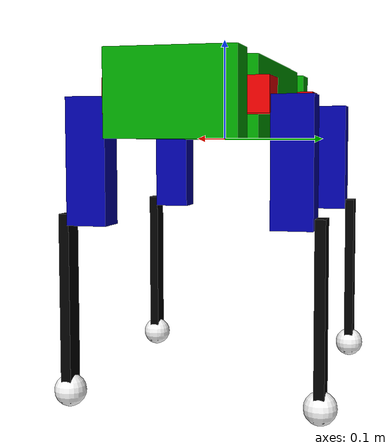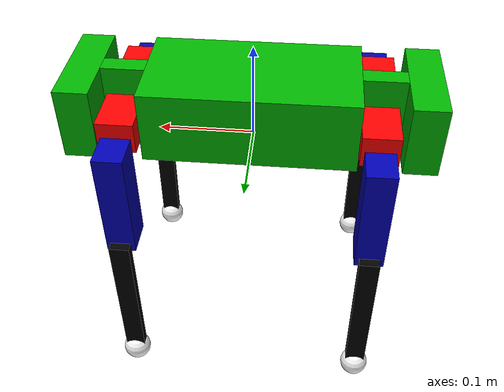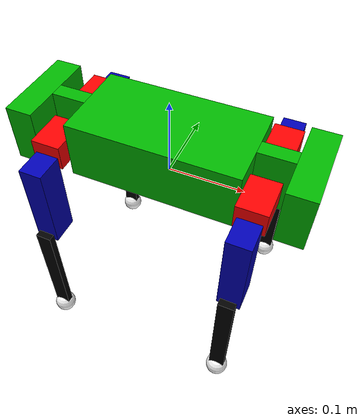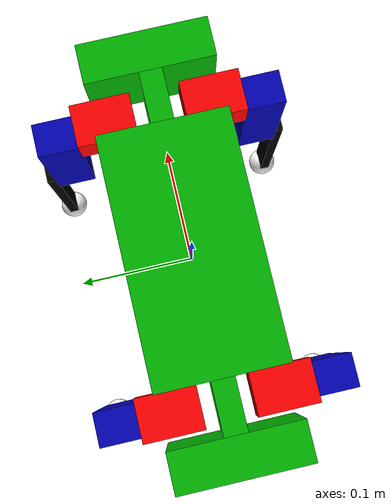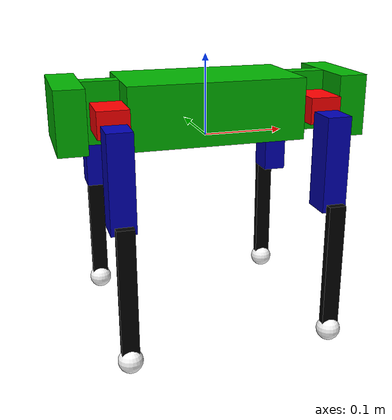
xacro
<?xml version="1.0"?>
<robot xmlns:xacro="http://ros.org/wiki/xacro" name="Robodog">

  <!-- LEG CONFIGURATION VARIABLES -->

  <!-- Leg segment lengths (easy to modify) -->
  <xacro:property name="upper_leg_length" value="0.1054"/>
  <xacro:property name="lower_leg_length" value="0.165"/>

  <!-- Leg positioning relative to body -->
  <xacro:property name="leg_front_x" value="0.12675"/>
  <xacro:property name="leg_back_x" value="-0.12675"/>
  <xacro:property name="leg_left_y" value="0.032"/>
  <xacro:property name="leg_right_y" value="-0.032"/>
  <xacro:property name="leg_base_z" value="0.0375"/>

  <!-- Servo dimensions and positioning -->
  <xacro:property name="servo_width" value="0.0375"/>
  <xacro:property name="servo_depth" value="0.0527"/>
  <xacro:property name="servo_height" value="0.0317"/>
  <xacro:property name="servo_y_offset_right" value="-0.01624"/>
  <xacro:property name="servo_y_offset_left" value="0.01624"/>

  <!-- Upper leg dimensions -->
  <xacro:property name="upper_leg_width" value="0.0297"/>
  <xacro:property name="upper_leg_depth" value="0.037"/>

  <!-- Lower leg dimensions -->
  <xacro:property name="lower_leg_width" value="0.021"/>
  <xacro:property name="lower_leg_depth" value="0.009487"/>

  <!-- Paw dimensions -->
  <xacro:property name="paw_radius" value="0.015"/>

  <!-- CALCULATED OFFSETS (AUTOMATIC) -->

  <!-- Overlap distance for better visual connection -->
  <xacro:property name="overlap_distance" value="0.005"/>

  <!-- Visual leg lengths (longer than actual for overlap) -->
  <xacro:property name="upper_leg_visual_length" value="${upper_leg_length + overlap_distance * 2}"/>
  <xacro:property name="lower_leg_visual_length" value="${lower_leg_length + overlap_distance * 2}"/>

  <!-- Offset from servo to upper leg joint (servo depth/2 + upper leg depth/2 - overlap) -->
  <xacro:property name="servo_to_upper_offset" value="${servo_depth/2 + upper_leg_depth/2 - overlap_distance/2}"/>

  <!-- Offset from upper leg to lower leg joint (upper leg depth/2 + lower leg depth/2 - overlap) -->
  <xacro:property name="upper_to_lower_offset" value="${upper_leg_depth/2 + lower_leg_depth*2}"/>

  <!-- Distance from lower leg joint to paw (equals lower leg length) -->
  <xacro:property name="lower_to_paw_offset" value="${lower_leg_length}"/>

  <!-- Joint limits -->
  <xacro:property name="servo_joint_lower" value="-1.0"/>
  <xacro:property name="servo_joint_upper" value="1.0"/>
  <xacro:property name="leg_joint_lower" value="-1.5"/>
  <xacro:property name="leg_joint_upper" value="1.5"/>
  <xacro:property name="joint_effort" value="0.0"/>
  <xacro:property name="joint_velocity" value="0.2"/>

  <!-- Materials -->
  <material name="red"><color rgba="1 0.0 0.0 1.0"/></material>
  <material name="green"><color rgba="0.0 0.7 0.0 1.0"/></material>
  <material name="blue"><color rgba="0.0 0.0 0.7 1.0"/></material>
  <material name="black"><color rgba="0.0 0.0 0.0 1.0"/></material>
  <material name="white"><color rgba="1.0 1.0 1.0 1.0"/></material>

  <!-- Macros for links -->
  <xacro:macro name="box_link" params="name size xyz rpy color">
    <link name="${name}">
      <visual>
        <origin xyz="${xyz}" rpy="${rpy}"/>
        <geometry>
          <box size="${size}"/>
        </geometry>
        <material name="${color}"/>
      </visual>
    </link>
  </xacro:macro>

  <xacro:macro name="sphere_link" params="name radius color xyz">
    <link name="${name}">
      <visual>
        <origin xyz="${xyz}" rpy="0.0 0.0 0.0"/>
        <geometry>
          <sphere radius="${radius}"/>
        </geometry>
        <material name="${color}"/>
      </visual>
    </link>
  </xacro:macro>

  <!-- Macros for joints -->
  <xacro:macro name="joint_fixed" params="name xyz rpy parent child">
    <joint name="${name}" type="fixed">
      <origin xyz="${xyz}" rpy="${rpy}"/>
      <parent link="${parent}"/>
      <child link="${child}"/>
    </joint>
  </xacro:macro>

  <xacro:macro name="joint_revolute" params="name xyz rpy parent child axis lower upper effort velocity">
    <joint name="${name}" type="revolute">
      <origin xyz="${xyz}" rpy="${rpy}"/>
      <parent link="${parent}"/>
      <child link="${child}"/>
      <axis xyz="${axis}"/>
      <limit lower="${lower}" upper="${upper}" effort="${effort}" velocity="${velocity}"/>
    </joint>
  </xacro:macro>

  <!-- Macro for a complete leg using configurable variables -->
  <xacro:macro name="robodog_leg" params="prefix reflect_y is_front servo_color upper_leg_color lower_leg_color paw_color">
    <!-- Calculate positions based on variables -->
    <xacro:if value="${reflect_y == -1}">
      <xacro:property name="servo_y_offset" value="${servo_y_offset_right}"/>
      <xacro:property name="leg_y_pos" value="${leg_right_y}"/>
    </xacro:if>
    <xacro:unless value="${reflect_y == -1}">
      <xacro:property name="servo_y_offset" value="${servo_y_offset_left}"/>
      <xacro:property name="leg_y_pos" value="${leg_left_y}"/>
    </xacro:unless>

    <xacro:if value="${is_front}">
      <xacro:property name="leg_x_pos" value="${leg_front_x}"/>
    </xacro:if>
    <xacro:unless value="${is_front}">
      <xacro:property name="leg_x_pos" value="${leg_back_x}"/>
    </xacro:unless>

    <!-- SIMPLE LOGIC: Each link positions its visual relative to its own joint origin -->
    <xacro:property name="upper_leg_z_center" value="${-upper_leg_visual_length/2}"/>
    <xacro:property name="lower_leg_z_center" value="${-lower_leg_visual_length/2}"/>

    <!-- Servo -->
    <xacro:box_link name="${prefix}_Servo"
                    size="${servo_width} ${servo_depth} ${servo_height}"
                    xyz="0.0 ${servo_y_offset} 0.0"
                    rpy="0.0 0.0 0.0"
                    color="${servo_color}"/>

    <!-- Upper leg: joint is at servo edge, so position visual to touch -->
    <xacro:box_link name="${prefix}_upper_leg"
                    size="${upper_leg_width} ${upper_leg_depth} ${upper_leg_visual_length}"
                    xyz="0.0 ${upper_leg_depth/2 * reflect_y} ${upper_leg_z_center}"
                    rpy="0.0 0.0 0.0"
                    color="${upper_leg_color}"/>

    <!-- Lower leg: joint is at upper leg edge, so position visual to touch -->
    <xacro:box_link name="${prefix}_lower_leg"
                    size="${lower_leg_width} ${lower_leg_depth} ${lower_leg_visual_length}"
                    xyz="0.0 ${lower_leg_depth/2 * reflect_y} ${lower_leg_z_center}"
                    rpy="0.0 0.0 0.0"
                    color="${lower_leg_color}"/>

    <!-- Paw: centered with lower leg, positioned slightly below the joint -->
    <xacro:property name="paw_offset_down" value="0.02"/>
    <xacro:sphere_link name="${prefix}_paw"
                       radius="${paw_radius}"
                       color="${paw_color}"
                       xyz="0.0 ${lower_leg_depth/2 * reflect_y} ${-paw_offset_down}"/>

    <!-- Joints with calculated positions -->
    <xacro:joint_revolute name="${prefix}"
                         xyz="${leg_x_pos} ${leg_y_pos} ${leg_base_z}"
                         rpy="0.0 0.0 0.0"
                         parent="base_link"
                         child="${prefix}_Servo"
                         axis="1.0 0.0 0.0"
                         lower="${servo_joint_lower}"
                         upper="${servo_joint_upper}"
                         effort="${joint_effort}"
                         velocity="${joint_velocity}"/>

    <xacro:joint_revolute name="${prefix}_leg"
                         xyz="0.0 ${servo_to_upper_offset * reflect_y} 0.0"
                         rpy="0.0 0.0 0.0"
                         parent="${prefix}_Servo"
                         child="${prefix}_upper_leg"
                         axis="0.0 1.0 0.0"
                         lower="${leg_joint_lower}"
                         upper="${leg_joint_upper}"
                         effort="${joint_effort}"
                         velocity="${joint_velocity}"/>

    <xacro:joint_revolute name="${prefix}_foot"
                         xyz="0.0 ${upper_to_lower_offset * reflect_y} ${-upper_leg_length}"
                         rpy="0.0 0.0 0.0"
                         parent="${prefix}_upper_leg"
                         child="${prefix}_lower_leg"
                         axis="0.0 1.0 0.0"
                         lower="${leg_joint_lower}"
                         upper="${leg_joint_upper}"
                         effort="${joint_effort}"
                         velocity="${joint_velocity}"/>

    <xacro:joint_fixed name="${prefix}_PAW"
                      xyz="0.0 0.0 ${-lower_leg_length + paw_offset_down}"
                      rpy="0.0 0.0 0.0"
                      parent="${prefix}_lower_leg"
                      child="${prefix}_paw"/>
  </xacro:macro>

  <!-- Body links -->
  <xacro:box_link name="base_link"         size="0.216 0.114 0.075" xyz="0.0 0.0 0.0375" rpy="0.0 0.0 0.0" color="green"/>
  <xacro:box_link name="connector_front"   size="0.045 0.02 0.075"  xyz="0.0 0.0 0.0"    rpy="0.0 0.0 0.0" color="green"/>
  <xacro:box_link name="connector_back"    size="0.045 0.02 0.075"  xyz="0.0 0.0 0.0"    rpy="0.0 0.0 0.0" color="green"/>
  <xacro:box_link name="head"              size="0.035 0.114 0.075" xyz="0.0 0.0 0.0"    rpy="0.0 0.0 0.0" color="green"/>
  <xacro:box_link name="ass"               size="0.035 0.114 0.075" xyz="0.0 0.0 0.0"    rpy="0.0 0.0 0.0" color="green"/>

  <!-- Body joints -->
  <xacro:joint_fixed name="joint_body1" xyz="0.1305 0.0 0.0375" rpy="0.0 0.0 0.0" parent="base_link" child="connector_front"/>
  <xacro:joint_fixed name="joint_body2" xyz="-0.1305 0.0 0.0375" rpy="0.0 0.0 0.0" parent="base_link" child="connector_back"/>
  <xacro:joint_fixed name="neck" xyz="0.04 0.0 0.0" rpy="0.0 0.0 0.0" parent="connector_front" child="head"/>
  <xacro:joint_fixed name="lower_back" xyz="-0.04 0.0 0.0" rpy="0.0 0.0 0.0" parent="connector_back" child="ass"/>

  <!-- Legs using simplified macro with variables -->
  <!-- Front Right -->
  <xacro:robodog_leg prefix="FR" reflect_y="-1" is_front="true"
                     servo_color="red" upper_leg_color="blue" lower_leg_color="black" paw_color="white"/>

  <!-- Back Right -->
  <xacro:robodog_leg prefix="BR" reflect_y="-1" is_front="false"
                     servo_color="red" upper_leg_color="blue" lower_leg_color="black" paw_color="white"/>

  <!-- Front Left -->
  <xacro:robodog_leg prefix="FL" reflect_y="1" is_front="true"
                     servo_color="red" upper_leg_color="blue" lower_leg_color="black" paw_color="white"/>

  <!-- Back Left -->
  <xacro:robodog_leg prefix="BL" reflect_y="1" is_front="false"
                     servo_color="red" upper_leg_color="blue" lower_leg_color="black" paw_color="white"/>

</robot>
